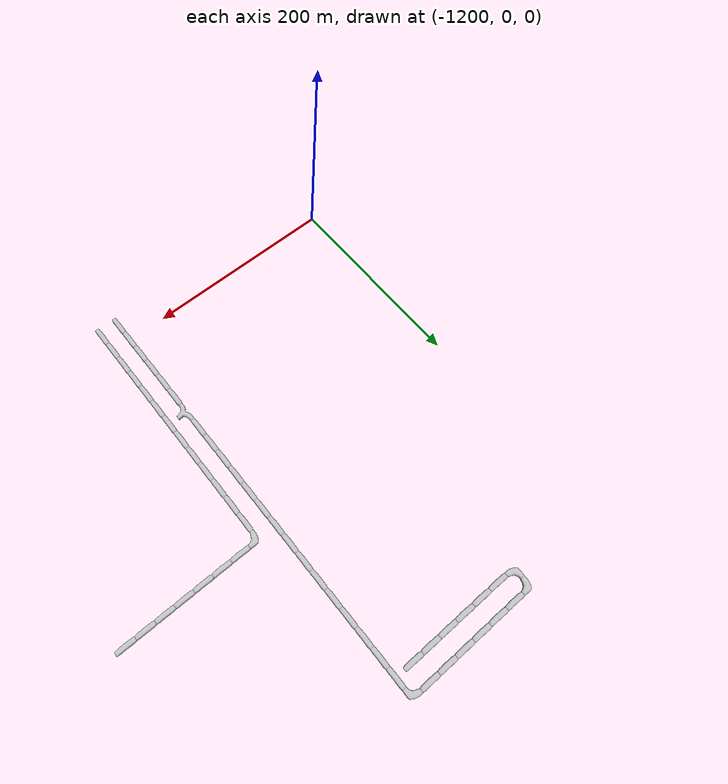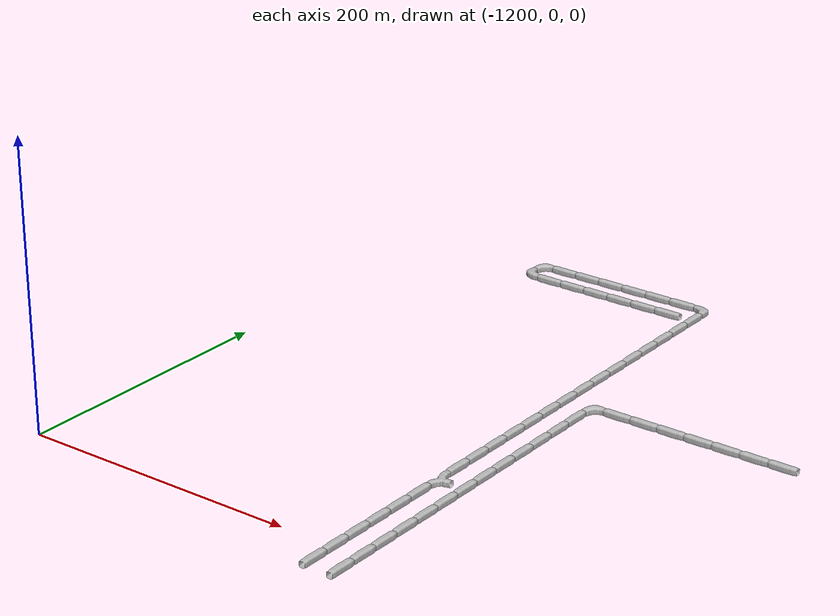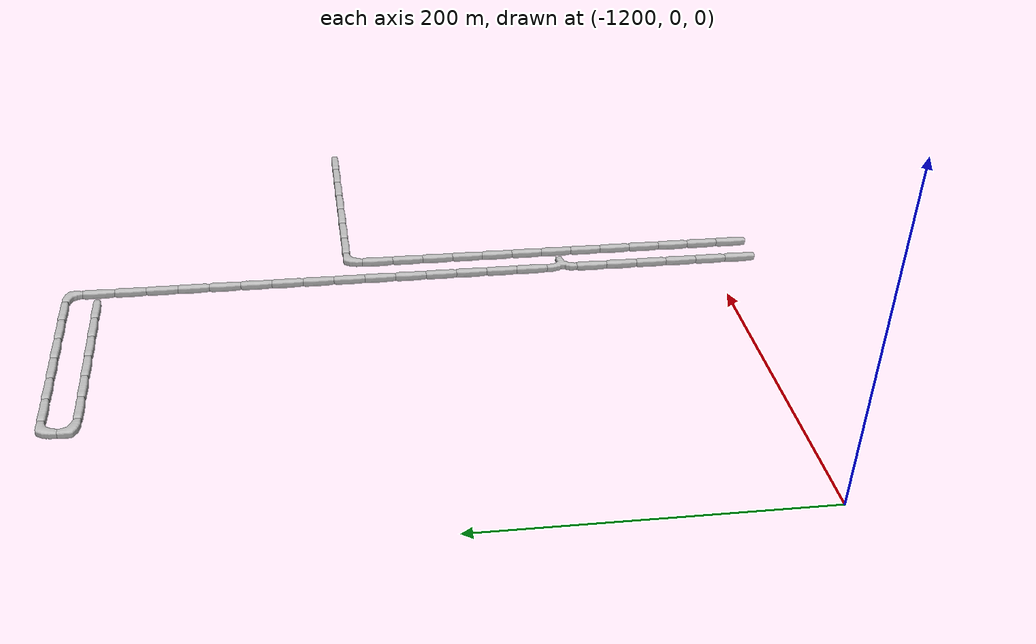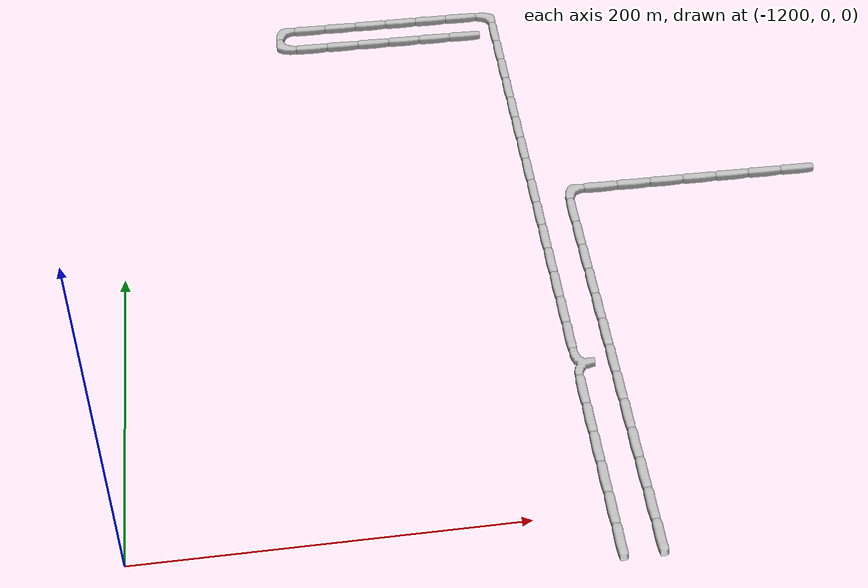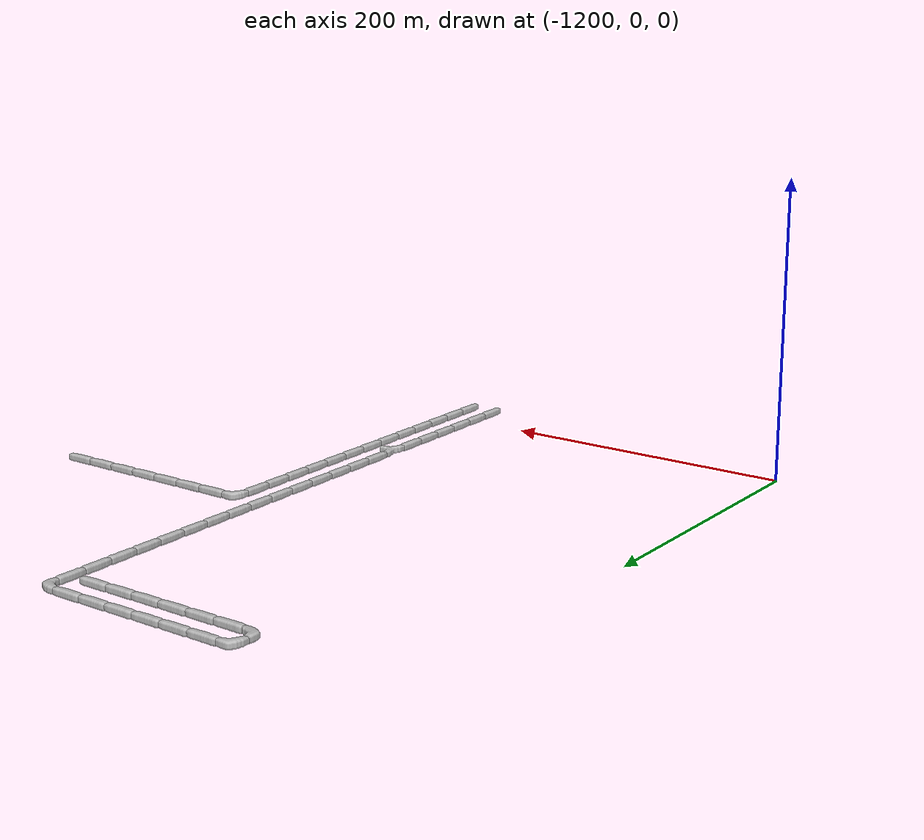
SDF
<sdf version="1.6">
 <world name="cave_32000_2">
  <include>
   <static>true</static>
   <name>cave_-48_-1</name>
   <pose>-960 -20 0 0 0 0.0</pose>
   <uri>model://cave_straight_20m</uri>
  </include>
  <include>
   <static>true</static>
   <name>cave_-48_0</name>
   <pose>-960 0 0 0 0 0.0</pose>
   <uri>model://cave_straight_20m</uri>
  </include>
  <include>
   <static>true</static>
   <name>cave_-48_1</name>
   <pose>-960 20 0 0 0 0.0</pose>
   <uri>model://cave_straight_20m</uri>
  </include>
  <include>
   <static>true</static>
   <name>cave_-48_2</name>
   <pose>-960 40 0 0 0 0.0</pose>
   <uri>model://cave_straight_20m</uri>
  </include>
  <include>
   <static>true</static>
   <name>cave_-48_3</name>
   <pose>-960 60 0 0 0 0.0</pose>
   <uri>model://cave_straight_20m</uri>
  </include>
  <include>
   <static>true</static>
   <name>cave_-48_4</name>
   <pose>-960 80 0 0 0 0.0</pose>
   <uri>model://cave_straight_20m</uri>
  </include>
  <include>
   <static>true</static>
   <name>cave_-48_5</name>
   <pose>-960 100 0 0 0 -1.5707963267948966</pose>
   <uri>model://cave_3way_20m</uri>
  </include>
  <include>
   <static>true</static>
   <name>cave_-48_6</name>
   <pose>-960 120 0 0 0 0.0</pose>
   <uri>model://cave_straight_20m</uri>
  </include>
  <include>
   <static>true</static>
   <name>cave_-48_7</name>
   <pose>-960 140 0 0 0 0.0</pose>
   <uri>model://cave_straight_20m</uri>
  </include>
  <include>
   <static>true</static>
   <name>cave_-48_8</name>
   <pose>-960 160 0 0 0 0.0</pose>
   <uri>model://cave_straight_20m</uri>
  </include>
  <include>
   <static>true</static>
   <name>cave_-48_9</name>
   <pose>-960 180 0 0 0 0.0</pose>
   <uri>model://cave_straight_20m</uri>
  </include>
  <include>
   <static>true</static>
   <name>cave_-48_10</name>
   <pose>-960 200 0 0 0 0.0</pose>
   <uri>model://cave_straight_20m</uri>
  </include>
  <include>
   <static>true</static>
   <name>cave_-48_11</name>
   <pose>-960 220 0 0 0 0.0</pose>
   <uri>model://cave_straight_20m</uri>
  </include>
  <include>
   <static>true</static>
   <name>cave_-48_12</name>
   <pose>-960 240 0 0 0 0.0</pose>
   <uri>model://cave_straight_20m</uri>
  </include>
  <include>
   <static>true</static>
   <name>cave_-48_13</name>
   <pose>-960 260 0 0 0 0.0</pose>
   <uri>model://cave_straight_20m</uri>
  </include>
  <include>
   <static>true</static>
   <name>cave_-48_14</name>
   <pose>-960 280 0 0 0 0.0</pose>
   <uri>model://cave_straight_20m</uri>
  </include>
  <include>
   <static>true</static>
   <name>cave_-48_15</name>
   <pose>-960 300 0 0 0 0.0</pose>
   <uri>model://cave_straight_20m</uri>
  </include>
  <include>
   <static>true</static>
   <name>cave_-48_16</name>
   <pose>-960 320 0 0 0 0.0</pose>
   <uri>model://cave_straight_20m</uri>
  </include>
  <include>
   <static>true</static>
   <name>cave_-48_17</name>
   <pose>-960 340 0 0 0 0.0</pose>
   <uri>model://cave_straight_20m</uri>
  </include>
  <include>
   <static>true</static>
   <name>cave_-48_18</name>
   <pose>-960 360 0 0 0 0.0</pose>
   <uri>model://cave_straight_20m</uri>
  </include>
  <include>
   <static>true</static>
   <name>cave_-48_19</name>
   <pose>-960 380 0 0 0 0.0</pose>
   <uri>model://cave_straight_20m</uri>
  </include>
  <include>
   <static>true</static>
   <name>cave_-48_20</name>
   <pose>-960 400 0 0 0 0.0</pose>
   <uri>model://cave_straight_20m</uri>
  </include>
  <include>
   <static>true</static>
   <name>cave_-48_21</name>
   <pose>-960 420 0 0 0 3.141592653589793</pose>
   <uri>model://cave_L_20m</uri>
  </include>
  <include>
   <static>true</static>
   <name>cave_-49_21</name>
   <pose>-980 420 0 0 0 1.5707963267948966</pose>
   <uri>model://cave_straight_20m</uri>
  </include>
  <include>
   <static>true</static>
   <name>cave_-50_21</name>
   <pose>-1000 420 0 0 0 1.5707963267948966</pose>
   <uri>model://cave_straight_20m</uri>
  </include>
  <include>
   <static>true</static>
   <name>cave_-51_21</name>
   <pose>-1020 420 0 0 0 1.5707963267948966</pose>
   <uri>model://cave_straight_20m</uri>
  </include>
  <include>
   <static>true</static>
   <name>cave_-52_21</name>
   <pose>-1040 420 0 0 0 1.5707963267948966</pose>
   <uri>model://cave_straight_20m</uri>
  </include>
  <include>
   <static>true</static>
   <name>cave_-53_21</name>
   <pose>-1060 420 0 0 0 1.5707963267948966</pose>
   <uri>model://cave_straight_20m</uri>
  </include>
  <include>
   <static>true</static>
   <name>cave_-54_21</name>
   <pose>-1080 420 0 0 0 1.5707963267948966</pose>
   <uri>model://cave_straight_20m</uri>
  </include>
  <include>
   <static>true</static>
   <name>cave_-55_21</name>
   <pose>-1100 420 0 0 0 -1.5707963267948966</pose>
   <uri>model://cave_L_20m</uri>
  </include>
  <include>
   <static>true</static>
   <name>cave_-55_20</name>
   <pose>-1100 400 0 0 0 0.0</pose>
   <uri>model://cave_L_20m</uri>
  </include>
  <include>
   <static>true</static>
   <name>cave_-54_20</name>
   <pose>-1080 400 0 0 0 1.5707963267948966</pose>
   <uri>model://cave_straight_20m</uri>
  </include>
  <include>
   <static>true</static>
   <name>cave_-53_20</name>
   <pose>-1060 400 0 0 0 1.5707963267948966</pose>
   <uri>model://cave_straight_20m</uri>
  </include>
  <include>
   <static>true</static>
   <name>cave_-52_20</name>
   <pose>-1040 400 0 0 0 1.5707963267948966</pose>
   <uri>model://cave_straight_20m</uri>
  </include>
  <include>
   <static>true</static>
   <name>cave_-51_20</name>
   <pose>-1020 400 0 0 0 1.5707963267948966</pose>
   <uri>model://cave_straight_20m</uri>
  </include>
  <include>
   <static>true</static>
   <name>cave_-50_20</name>
   <pose>-1000 400 0 0 0 1.5707963267948966</pose>
   <uri>model://cave_straight_20m</uri>
  </include>
  <include>
   <static>true</static>
   <name>cave_-49_20</name>
   <pose>-980 400 0 0 0 1.5707963267948966</pose>
   <uri>model://cave_straight_20m</uri>
  </include>
  <include>
   <static>true</static>
   <name>cave_-47_-1</name>
   <pose>-940 -20 0 0 0 0.0</pose>
   <uri>model://cave_straight_20m</uri>
  </include>
  <include>
   <static>true</static>
   <name>cave_-47_0</name>
   <pose>-940 0 0 0 0 0.0</pose>
   <uri>model://cave_straight_20m</uri>
  </include>
  <include>
   <static>true</static>
   <name>cave_-47_1</name>
   <pose>-940 20 0 0 0 0.0</pose>
   <uri>model://cave_straight_20m</uri>
  </include>
  <include>
   <static>true</static>
   <name>cave_-47_2</name>
   <pose>-940 40 0 0 0 0.0</pose>
   <uri>model://cave_straight_20m</uri>
  </include>
  <include>
   <static>true</static>
   <name>cave_-47_3</name>
   <pose>-940 60 0 0 0 0.0</pose>
   <uri>model://cave_straight_20m</uri>
  </include>
  <include>
   <static>true</static>
   <name>cave_-47_4</name>
   <pose>-940 80 0 0 0 0.0</pose>
   <uri>model://cave_straight_20m</uri>
  </include>
  <include>
   <static>true</static>
   <name>cave_-47_5</name>
   <pose>-940 100 0 0 0 0.0</pose>
   <uri>model://cave_straight_20m</uri>
  </include>
  <include>
   <static>true</static>
   <name>cave_-47_6</name>
   <pose>-940 120 0 0 0 0.0</pose>
   <uri>model://cave_straight_20m</uri>
  </include>
  <include>
   <static>true</static>
   <name>cave_-47_7</name>
   <pose>-940 140 0 0 0 0.0</pose>
   <uri>model://cave_straight_20m</uri>
  </include>
  <include>
   <static>true</static>
   <name>cave_-47_8</name>
   <pose>-940 160 0 0 0 0.0</pose>
   <uri>model://cave_straight_20m</uri>
  </include>
  <include>
   <static>true</static>
   <name>cave_-47_9</name>
   <pose>-940 180 0 0 0 0.0</pose>
   <uri>model://cave_straight_20m</uri>
  </include>
  <include>
   <static>true</static>
   <name>cave_-47_10</name>
   <pose>-940 200 0 0 0 0.0</pose>
   <uri>model://cave_straight_20m</uri>
  </include>
  <include>
   <static>true</static>
   <name>cave_-47_11</name>
   <pose>-940 220 0 0 0 0.0</pose>
   <uri>model://cave_straight_20m</uri>
  </include>
  <include>
   <static>true</static>
   <name>cave_-47_12</name>
   <pose>-940 240 0 0 0 -1.5707963267948966</pose>
   <uri>model://cave_L_20m</uri>
  </include>
  <include>
   <static>true</static>
   <name>cave_-46_12</name>
   <pose>-920 240 0 0 0 1.5707963267948966</pose>
   <uri>model://cave_straight_20m</uri>
  </include>
  <include>
   <static>true</static>
   <name>cave_-45_12</name>
   <pose>-900 240 0 0 0 1.5707963267948966</pose>
   <uri>model://cave_straight_20m</uri>
  </include>
  <include>
   <static>true</static>
   <name>cave_-44_12</name>
   <pose>-880 240 0 0 0 1.5707963267948966</pose>
   <uri>model://cave_straight_20m</uri>
  </include>
  <include>
   <static>true</static>
   <name>cave_-43_12</name>
   <pose>-860 240 0 0 0 1.5707963267948966</pose>
   <uri>model://cave_straight_20m</uri>
  </include>
  <include>
   <static>true</static>
   <name>cave_-42_12</name>
   <pose>-840 240 0 0 0 1.5707963267948966</pose>
   <uri>model://cave_straight_20m</uri>
  </include>
  <include>
   <static>true</static>
   <name>cave_-41_12</name>
   <pose>-820 240 0 0 0 1.5707963267948966</pose>
   <uri>model://cave_straight_20m</uri>
  </include>
  <include>
   <static>true</static>
   <name>cave_-40_12</name>
   <pose>-800 240 0 0 0 1.5707963267948966</pose>
   <uri>model://cave_straight_20m</uri>
  </include>
 </world>
</sdf>
